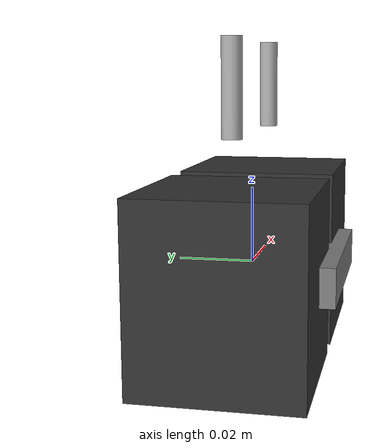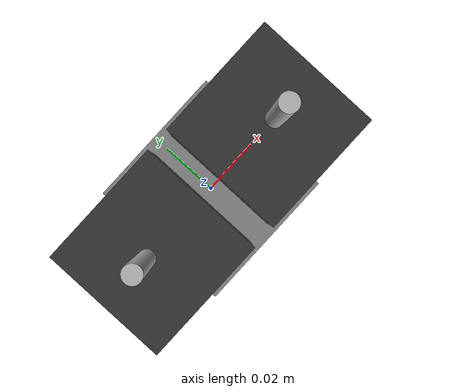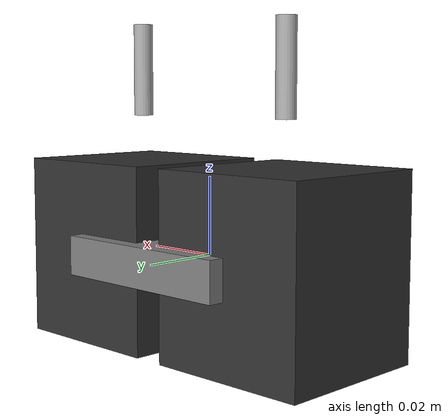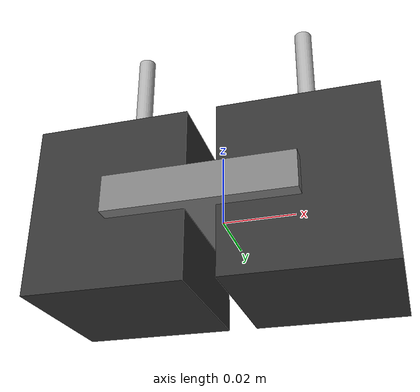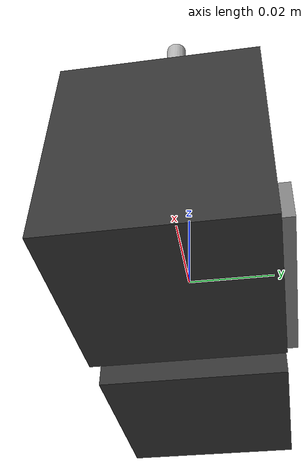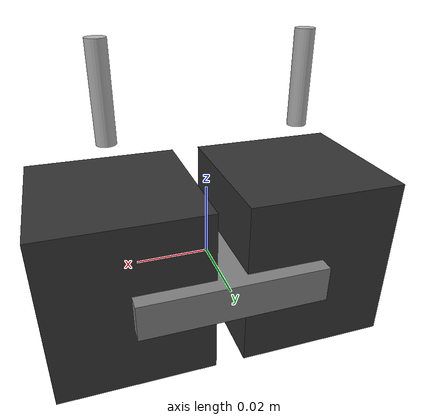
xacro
<?xml version="1.0"?>
<robot name="stepperbot" xmlns:xacro="http://www.ros.org/wiki/xacro">

  <!-- Forward hardware args to ros2_control xacro -->
  <xacro:arg name="serial_port"   default="/dev/ttyACM0"/>
  <xacro:arg name="baud_rate"     default="115200"/>

  <!-- Include ros2_control configuration -->
  <xacro:include filename="$(find stepperbot_description)/urdf/stepperbot.ros2_control.xacro"/>

  <!-- Example geometry for NEMA17 -->
  <xacro:property name="motor_width" value="0.042"/>
  <xacro:property name="motor_length" value="0.047"/>
  <xacro:property name="shaft_radius" value="0.0025"/>
  <xacro:property name="shaft_length" value="0.024"/>

  <link name="base_link">
    <visual>
      <geometry>
        <box size="0.05 0.05 0.01"/>
      </geometry>
      <material name="gray"><color rgba="0.5 0.5 0.5 1"/></material>
    </visual>
  </link>

  <!-- Motor 1 -->
  <link name="stepper_body_1">
    <visual>
      <geometry>
        <box size="${motor_width} ${motor_width} ${motor_length}"/>
      </geometry>
      <material name="dark"><color rgba="0.2 0.2 0.2 1"/></material>
    </visual>
  </link>

  <link name="stepper_shaft_1">
    <visual>
      <geometry>
        <cylinder radius="${shaft_radius}" length="${shaft_length}"/>
      </geometry>
      <material name="metal"><color rgba="0.7 0.7 0.7 1"/></material>
    </visual>
  </link>

  <joint name="base_to_body_1" type="fixed">
    <parent link="base_link"/>
    <child link="stepper_body_1"/>
    <origin xyz="-0.025 0 0" rpy="0 0 0"/>
  </joint>

  <joint name="stepper_joint_1" type="revolute">
    <parent link="stepper_body_1"/>
    <child link="stepper_shaft_1"/>
    <origin xyz="0 0 ${motor_length}" rpy="0 0 0"/>
    <axis xyz="0 0 1"/>
    <limit lower="-6.283" upper="6.283" velocity="100" effort="1"/>
  </joint>

  <!-- Motor 2 -->
  <link name="stepper_body_2">
    <visual>
      <geometry>
        <box size="${motor_width} ${motor_width} ${motor_length}"/>
      </geometry>
      <material name="dark"><color rgba="0.2 0.2 0.2 1"/></material>
    </visual>
  </link>

  <link name="stepper_shaft_2">
    <visual>
      <geometry>
        <cylinder radius="${shaft_radius}" length="${shaft_length}"/>
      </geometry>
      <material name="metal"><color rgba="0.7 0.7 0.7 1"/></material>
    </visual>
  </link>

  <joint name="base_to_body_2" type="fixed">
    <parent link="base_link"/>
    <child link="stepper_body_2"/>
    <origin xyz="0.025 0 0" rpy="0 0 0"/>
  </joint>

  <joint name="stepper_joint_2" type="revolute">
    <parent link="stepper_body_2"/>
    <child link="stepper_shaft_2"/>
    <origin xyz="0 0 ${motor_length}" rpy="0 0 0"/>
    <axis xyz="0 0 1"/>
    <limit lower="-6.283" upper="6.283" velocity="100" effort="1"/>
  </joint>

</robot>
